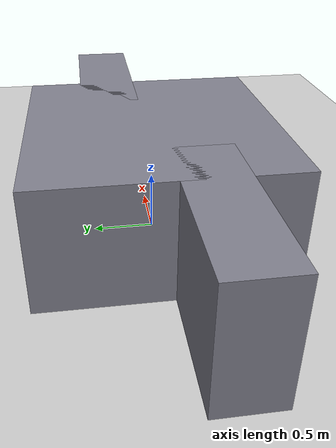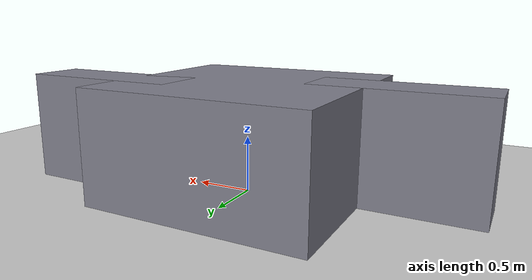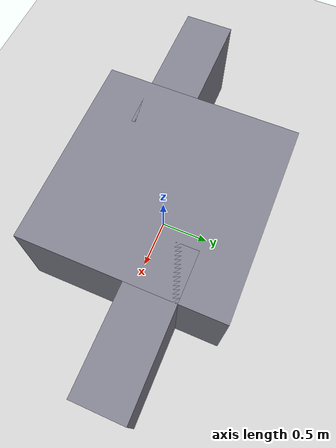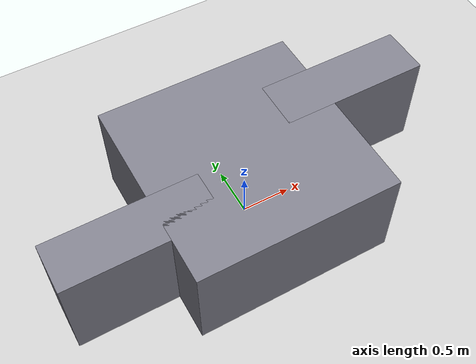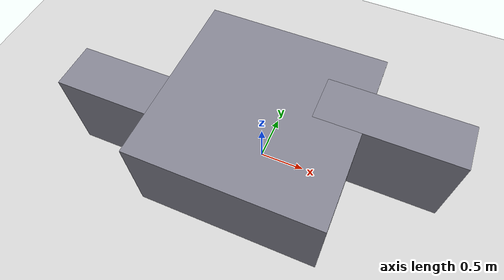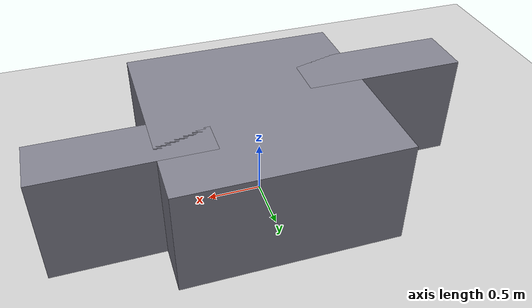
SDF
<?xml version="1.0"?>
<sdf version="1.8">
  <world name="maze07_world">
    <physics type="ode">
      <real_time_update_rate>1000.0</real_time_update_rate>
      <max_step_size>0.001</max_step_size>
      <real_time_factor>1</real_time_factor>
      <ode>
        <solver>
          <type>quick</type>
          <iters>150</iters>
          <precon_iters>0</precon_iters>
          <sor>1.400000</sor>
          <use_dynamic_moi_rescaling>1</use_dynamic_moi_rescaling>
        </solver>
        <constraints>
          <cfm>0.00001</cfm>
          <erp>0.2</erp>
          <contact_max_correcting_vel>2000.000000</contact_max_correcting_vel>
          <contact_surface_layer>0.01000</contact_surface_layer>
        </constraints>
      </ode>
    </physics>
    <plugin
      filename="gz-sim-physics-system"
      name="gz::sim::systems::Physics">
    </plugin>
    <plugin
      filename="gz-sim-user-commands-system"
      name="gz::sim::systems::UserCommands">
    </plugin>
    <plugin
      filename="gz-sim-scene-broadcaster-system"
      name="gz::sim::systems::SceneBroadcaster">
    </plugin>
    <plugin
      filename="gz-sim-sensors-system"
      name="gz::sim::systems::Sensors">
      <render_engine>ogre2</render_engine>
    </plugin>
    <plugin
      filename="gz-sim-imu-system"
      name="gz::sim::systems::Imu">
    </plugin>

    <include>
      <uri>https://fuel.gazebosim.org/1.0/OpenRobotics/models/Ground Plane</uri>
    </include>

    <include>
      <uri>https://fuel.gazebosim.org/1.0/OpenRobotics/models/Sun</uri>
    </include>

    <!-- ===== MAZE 07: SIMPLIFIED BLOCK MAZE ===== -->
    <!-- Arena: open space with no boundary walls -->
    <!-- One main connected obstacle -->

    <!-- ===== CONNECTED BLOCK OBSTACLE ===== -->
    <!-- Main central block -->
    <model name="block_central" static="true">
      <pose>0 0 0.5 0 0 0</pose>
      <link name="link">
        <collision name="col"><geometry><box><size>2 2 1.0</size></box></geometry></collision>
        <visual name="vis"><geometry><box><size>2 2 1.0</size></box></geometry>
          <material><ambient>0.5 0.5 0.55 1</ambient></material></visual>
      </link>
    </model>

    <!-- Left rectangle extension (connected to main block) -->
    <model name="block_left_extension" static="true">
      <pose>-1.25 -0.3 0.5 0 0 0</pose>
      <link name="link">
        <collision name="col"><geometry><box><size>1.5 0.5 1.0</size></box></geometry></collision>
        <visual name="vis"><geometry><box><size>1.5 0.5 1.0</size></box></geometry>
          <material><ambient>0.5 0.5 0.55 1</ambient></material></visual>
      </link>
    </model>

    <!-- Right rectangle extension (connected to main block) -->
    <model name="block_right_extension" static="true">
      <pose>1.25 0.3 0.5 0 0 0</pose>
      <link name="link">
        <collision name="col"><geometry><box><size>1.5 0.5 1.0</size></box></geometry></collision>
        <visual name="vis"><geometry><box><size>1.5 0.5 1.0</size></box></geometry>
          <material><ambient>0.5 0.5 0.55 1</ambient></material></visual>
      </link>
    </model>

    <gui fullscreen='0'>
      <camera name='user_camera'>
        <pose frame=''>0 0 12 0 1.57 0</pose>
        <view_controller>orbit</view_controller>
        <projection_type>perspective</projection_type>
      </camera>
    </gui>
  </world>
</sdf>
